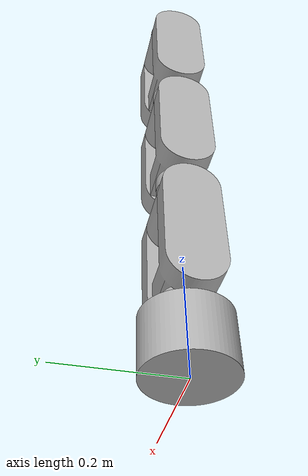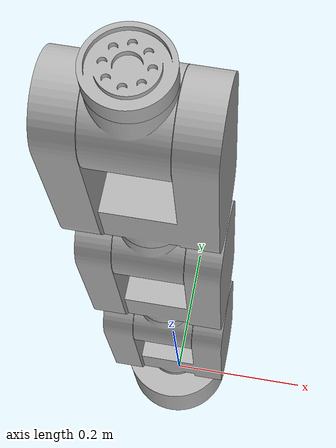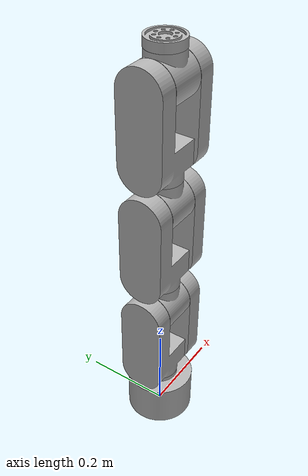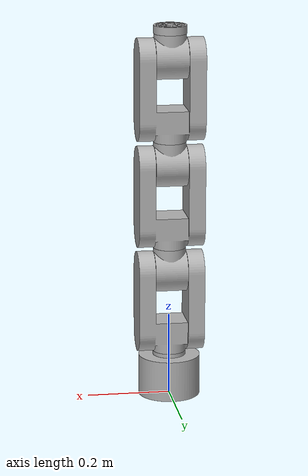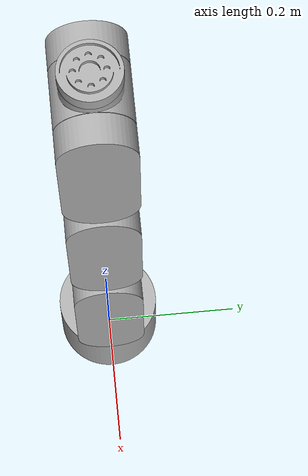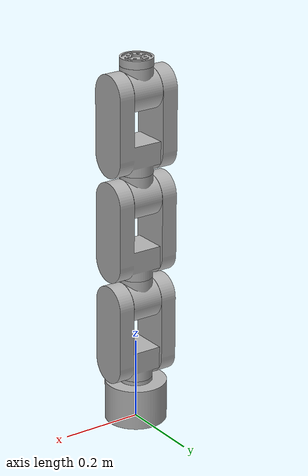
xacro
<?xml version="1.0" ?>
<robot name="smartarm" xmlns:xacro="http://www.ros.org/wiki/xacro">

<xacro:include filename="$(find smartarm_description)/urdf/materials.xacro" />
<xacro:include filename="$(find smartarm_description)/urdf/smartarm.trans" />
<xacro:include filename="$(find smartarm_description)/urdf/smartarm.gazebo" />
<link name="base_link">
  <inertial>
    <origin rpy="0 0 0" xyz="0.0 0.0 0.05152117545375974"/>
    <mass value="14.266679098298306"/>
    <inertia ixx="0.032389" ixy="0.0" ixz="0.0" iyy="0.032389" iyz="0.0" izz="0.039331"/>
  </inertial>
  <visual>
    <origin rpy="0 0 0" xyz="0 0 0"/>
    <geometry>
      <mesh filename="package://smartarm_description/meshes/base_link.stl" scale="0.001 0.001 0.001"/>
    </geometry>
    <material name="silver"/>
  </visual>
  <collision>
    <origin rpy="0 0 0" xyz="0 0 0"/>
    <geometry>
      <mesh filename="package://smartarm_description/meshes/base_link.stl" scale="0.001 0.001 0.001"/>
    </geometry>
  </collision>
</link>

<link name="link1_1">
  <inertial>
    <origin rpy="0 0 0" xyz="-6.859050840110401e-15 2.1584003352612715e-14 0.10998317448147261"/>
    <mass value="18.133123035314206"/>
    <inertia ixx="0.100194" ixy="-0.0" ixz="-0.0" iyy="0.142708" iyz="0.0" izz="0.068454"/>
  </inertial>
  <visual>
    <origin rpy="0 0 0" xyz="-0.0 -0.0 -0.11"/>
    <geometry>
      <mesh filename="package://smartarm_description/meshes/link1_1.stl" scale="0.001 0.001 0.001"/>
    </geometry>
    <material name="silver"/>
  </visual>
  <collision>
    <origin rpy="0 0 0" xyz="-0.0 -0.0 -0.11"/>
    <geometry>
      <mesh filename="package://smartarm_description/meshes/link1_1.stl" scale="0.001 0.001 0.001"/>
    </geometry>
  </collision>
</link>

<link name="link2_1">
  <inertial>
    <origin rpy="0 0 0" xyz="-1.2079226507921704e-15 0.3155739575829471 0.1530310455905169"/>
    <mass value="5.318367133925008"/>
    <inertia ixx="0.007409" ixy="0.0" ixz="0.0" iyy="0.006392" iyz="-0.000415" izz="0.006392"/>
  </inertial>
  <visual>
    <origin rpy="0 0 0" xyz="-0.0 0.312543 -0.162543"/>
    <geometry>
      <mesh filename="package://smartarm_description/meshes/link2_1.stl" scale="0.001 0.001 0.001"/>
    </geometry>
    <material name="silver"/>
  </visual>
  <collision>
    <origin rpy="0 0 0" xyz="-0.0 0.312543 -0.162543"/>
    <geometry>
      <mesh filename="package://smartarm_description/meshes/link2_1.stl" scale="0.001 0.001 0.001"/>
    </geometry>
  </collision>
</link>

<link name="link3_1">
  <inertial>
    <origin rpy="0 0 0" xyz="-6.859050840110401e-15 0.07777025536348078 0.07777034337102023"/>
    <mass value="18.133123035314206"/>
    <inertia ixx="0.100194" ixy="-0.0" ixz="0.0" iyy="0.105581" iyz="-0.037127" izz="0.105581"/>
  </inertial>
  <visual>
    <origin rpy="0 0 0" xyz="-0.0 -0.042426 -0.354969"/>
    <geometry>
      <mesh filename="package://smartarm_description/meshes/link3_1.stl" scale="0.001 0.001 0.001"/>
    </geometry>
    <material name="silver"/>
  </visual>
  <collision>
    <origin rpy="0 0 0" xyz="-0.0 -0.042426 -0.354969"/>
    <geometry>
      <mesh filename="package://smartarm_description/meshes/link3_1.stl" scale="0.001 0.001 0.001"/>
    </geometry>
  </collision>
</link>

<link name="link4_1">
  <inertial>
    <origin rpy="0 0 0" xyz="-1.2079226507921704e-15 0.33009795546675647 -0.38050887169156783"/>
    <mass value="5.318367133925008"/>
    <inertia ixx="0.007409" ixy="0.0" ixz="-0.0" iyy="0.006392" iyz="0.000415" izz="0.006392"/>
  </inertial>
  <visual>
    <origin rpy="0 0 0" xyz="-0.0 0.141421 -0.875667"/>
    <geometry>
      <mesh filename="package://smartarm_description/meshes/link4_1.stl" scale="0.001 0.001 0.001"/>
    </geometry>
    <material name="silver"/>
  </visual>
  <collision>
    <origin rpy="0 0 0" xyz="-0.0 0.141421 -0.875667"/>
    <geometry>
      <mesh filename="package://smartarm_description/meshes/link4_1.stl" scale="0.001 0.001 0.001"/>
    </geometry>
  </collision>
</link>

<link name="link5_1">
  <inertial>
    <origin rpy="0 0 0" xyz="-6.902146664551342e-15 0.07777025324725806 -0.07777016947210047"/>
    <mass value="18.133123035314206"/>
    <inertia ixx="0.100194" ixy="0.0" ixz="0.0" iyy="0.105581" iyz="0.037127" izz="0.105581"/>
  </inertial>
  <visual>
    <origin rpy="0 0 0" xyz="-0.0 -0.228072 -0.455763"/>
    <geometry>
      <mesh filename="package://smartarm_description/meshes/link5_1.stl" scale="0.001 0.001 0.001"/>
    </geometry>
    <material name="silver"/>
  </visual>
  <collision>
    <origin rpy="0 0 0" xyz="-0.0 -0.228072 -0.455763"/>
    <geometry>
      <mesh filename="package://smartarm_description/meshes/link5_1.stl" scale="0.001 0.001 0.001"/>
    </geometry>
  </collision>
</link>

<link name="link6_1">
  <inertial>
    <origin rpy="0 0 0" xyz="-1.2789769243681803e-15 -0.37319158291160176 -0.0645239119924289"/>
    <mass value="5.318367133925008"/>
    <inertia ixx="0.007409" ixy="0.0" ixz="-0.0" iyy="0.005977" iyz="-0.0" izz="0.006807"/>
  </inertial>
  <visual>
    <origin rpy="0 0 0" xyz="0.0 -0.74877 -0.377067"/>
    <geometry>
      <mesh filename="package://smartarm_description/meshes/link6_1.stl" scale="0.001 0.001 0.001"/>
    </geometry>
    <material name="silver"/>
  </visual>
  <collision>
    <origin rpy="0 0 0" xyz="0.0 -0.74877 -0.377067"/>
    <geometry>
      <mesh filename="package://smartarm_description/meshes/link6_1.stl" scale="0.001 0.001 0.001"/>
    </geometry>
  </collision>
</link>

<link name="link7_1">
  <inertial>
    <origin rpy="0 0 0" xyz="5.364622149394843e-13 0.00899990722502858 8.800588541246768e-08"/>
    <mass value="0.6963175183067462"/>
    <inertia ixx="0.000303" ixy="0.0" ixz="0.0" iyy="0.000566" iyz="-0.0" izz="0.000303"/>
  </inertial>
  <visual>
    <origin rpy="0 0 0" xyz="0.0 -0.431292 -0.312543"/>
    <geometry>
      <mesh filename="package://smartarm_description/meshes/link7_1.stl" scale="0.001 0.001 0.001"/>
    </geometry>
    <material name="silver"/>
  </visual>
  <collision>
    <origin rpy="0 0 0" xyz="0.0 -0.431292 -0.312543"/>
    <geometry>
      <mesh filename="package://smartarm_description/meshes/link7_1.stl" scale="0.001 0.001 0.001"/>
    </geometry>
  </collision>
</link>

<joint name="joint1" type="continuous">
  <origin rpy="0 0 0" xyz="0.0 0.0 0.11"/>
  <parent link="base_link"/>
  <child link="link1_1"/>
  <axis xyz="0.0 0.0 1.0"/>
</joint>

<joint name="joint2" type="continuous">
  <origin rpy="0 0 0" xyz="0.0 -0.312543 0.052543"/>
  <parent link="link1_1"/>
  <child link="link2_1"/>
  <axis xyz="-1.0 0.0 0.0"/>
</joint>

<joint name="joint3" type="continuous">
  <origin rpy="0 0 0" xyz="0.0 0.354969 0.192426"/>
  <parent link="link2_1"/>
  <child link="link3_1"/>
  <axis xyz="0.0 0.707107 0.707107"/>
</joint>

<joint name="joint4" type="continuous">
  <origin rpy="0 0 0" xyz="0.0 -0.183847 0.520698"/>
  <parent link="link3_1"/>
  <child link="link4_1"/>
  <axis xyz="-1.0 0.0 0.0"/>
</joint>

<joint name="joint5" type="continuous">
  <origin rpy="0 0 0" xyz="0.0 0.369493 -0.419904"/>
  <parent link="link4_1"/>
  <child link="link5_1"/>
  <axis xyz="-0.0 0.707107 -0.707107"/>
</joint>

<joint name="joint6" type="continuous">
  <origin rpy="0 0 0" xyz="-0.0 0.520698 -0.078696"/>
  <parent link="link5_1"/>
  <child link="link6_1"/>
  <axis xyz="-1.0 -0.0 0.0"/>
</joint>

<joint name="joint7" type="continuous">
  <origin rpy="0 0 0" xyz="0.0 -0.317478 -0.064524"/>
  <parent link="link6_1"/>
  <child link="link7_1"/>
  <axis xyz="-0.0 1.0 0.0"/>
</joint>

</robot>

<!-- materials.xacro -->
<robot name="smartarm" xmlns:xacro="http://www.ros.org/wiki/xacro" >

<material name="silver">
  <color rgba="0.700 0.700 0.700 1.000"/>
</material>

</robot>

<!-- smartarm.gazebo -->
<robot name="smartarm" xmlns:xacro="http://www.ros.org/wiki/xacro" >

<xacro:property name="body_color" value="Gazebo/Silver" />

<gazebo>
  <plugin filename="libgazebo_ros_control.so" name="control"/>
</gazebo>
<gazebo reference="base_link">
  <material>${body_color}</material>
  <mu1>0.2</mu1>
  <mu2>0.2</mu2>
  <selfCollide>true</selfCollide>
  <gravity>true</gravity>
</gazebo>

<gazebo reference="link1_1">
  <material>${body_color}</material>
  <mu1>0.2</mu1>
  <mu2>0.2</mu2>
  <selfCollide>true</selfCollide>
</gazebo>

<gazebo reference="link2_1">
  <material>${body_color}</material>
  <mu1>0.2</mu1>
  <mu2>0.2</mu2>
  <selfCollide>true</selfCollide>
</gazebo>

<gazebo reference="link3_1">
  <material>${body_color}</material>
  <mu1>0.2</mu1>
  <mu2>0.2</mu2>
  <selfCollide>true</selfCollide>
</gazebo>

<gazebo reference="link4_1">
  <material>${body_color}</material>
  <mu1>0.2</mu1>
  <mu2>0.2</mu2>
  <selfCollide>true</selfCollide>
</gazebo>

<gazebo reference="link5_1">
  <material>${body_color}</material>
  <mu1>0.2</mu1>
  <mu2>0.2</mu2>
  <selfCollide>true</selfCollide>
</gazebo>

<gazebo reference="link6_1">
  <material>${body_color}</material>
  <mu1>0.2</mu1>
  <mu2>0.2</mu2>
  <selfCollide>true</selfCollide>
</gazebo>

<gazebo reference="link7_1">
  <material>${body_color}</material>
  <mu1>0.2</mu1>
  <mu2>0.2</mu2>
  <selfCollide>true</selfCollide>
</gazebo>

</robot>
